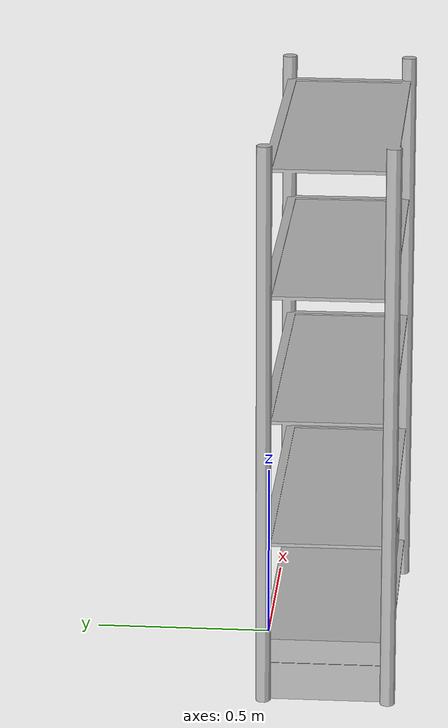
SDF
<?xml version="1.0" ?>
<sdf version="1.6">
  <model name="my_store_shelf_01">
    <link name="link">
      <inertial>
        <mass>1000</mass>
        <inertia>
          <ixx>840083.33</ixx>
          <ixy>0</ixy>
          <ixz>0</ixz>
          <iyy>475500.0</iyy>
          <iyz>0</iyz>
          <izz>1302083.33</izz>
        </inertia>
      </inertial>
      <collision name="collision">
        <geometry>
          <mesh>
            <uri>model://my_store_shelf_01/meshes/my_store_shelf_01.dae</uri>
            <scale>1 1 1</scale>
          </mesh>
        </geometry>
		<surface>
          <friction>
            <ode>
              <mu>0.5</mu>
              <mu2>0.5</mu2>
              <fdir1>0 0 0</fdir1>
              <slip1>0</slip1>
              <slip2>0</slip2>
            </ode>
        </friction>
          </surface>
      </collision>

      <visual name="visual">
	    <geometry>
          <mesh>
            <uri>model://my_store_shelf_01/meshes/my_store_shelf_01.dae</uri>
          </mesh>
          <box>
            <size>7.5 10 2.8</size>
          </box>
        </geometry>
      <meta> <layer> 2 </layer></meta>
      </visual>
    </link>
<static>1</static>
  </model>
</sdf>
